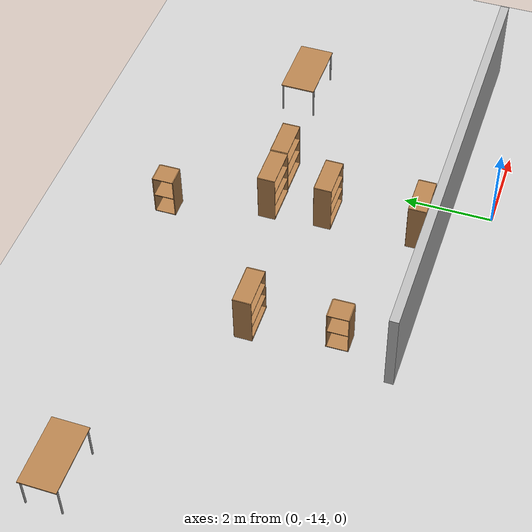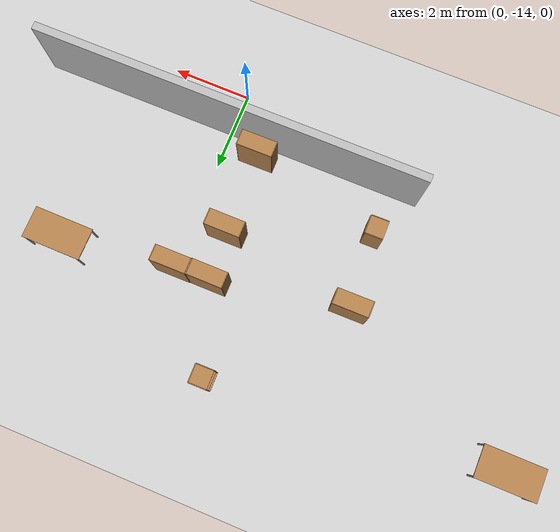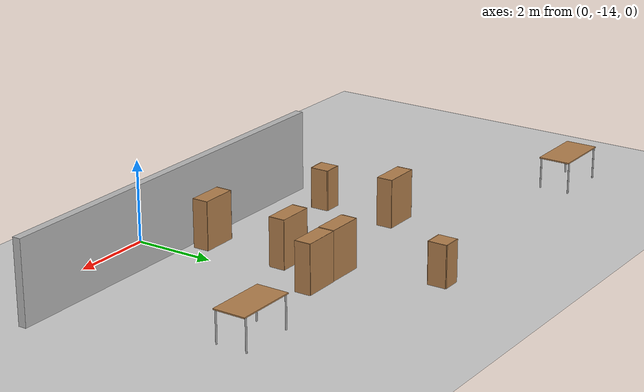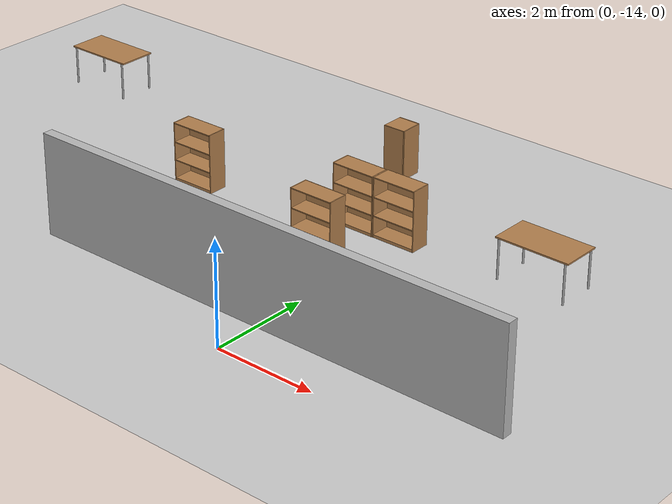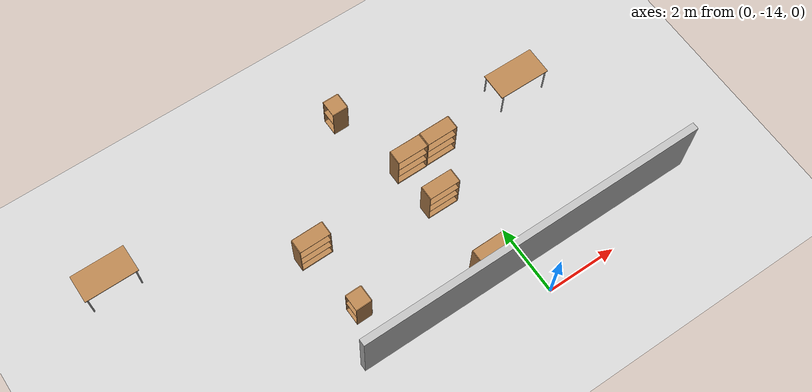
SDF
<sdf version="1.6">
 <world name="default">
  <model name="ground_plane">
   <static>1</static>
   <link name="link">
    <collision name="collision">
     <geometry><plane><normal>0 0 1</normal><size>100 100</size></plane></geometry>
     <surface><friction><ode><mu>100</mu><mu2>50</mu2></ode></friction></surface>
    </collision>
    <visual name="visual">
     <cast_shadows>0</cast_shadows>
     <geometry><plane><normal>0 0 1</normal><size>100 100</size></plane></geometry>
     <material>
      <script><uri>file://media/materials/scripts/gazebo.material</uri><name>Gazebo/Grey</name></script>
     </material>
    </visual>
    <velocity_decay><linear>0</linear><angular>0</angular></velocity_decay>
   </link>
  </model>
  <model name="wall_1_model">
   <pose>0 -13 1 0 -0 0</pose>
   <static>1</static>
   <link name="wall_1_body">
    <inertial>
     <mass>1</mass>
     <inertia><ixx>1</ixx><ixy>0</ixy><ixz>0</ixz><iyy>1</iyy><iyz>0</iyz><izz>1</izz></inertia>
    </inertial>
    <collision name="collision"><geometry><box><size>10 0.2 2</size></box></geometry></collision>
    <visual name="visual"><geometry><box><size>10 0.2 2</size></box></geometry></visual>
    <velocity_decay><linear>0</linear><angular>0</angular></velocity_decay>
   </link>
  </model>
  <model name="cabinet_0">
   <static>0</static>
   <link name="cabinet_bottom_plate">
    <inertial>
     <pose>0 0 -1 0 -0 0</pose>
     <inertia><ixx>2.05</ixx><ixy>0</ixy><ixz>0</ixz><iyy>2.05</iyy><iyz>0</iyz><izz>2.05</izz></inertia>
     <mass>25</mass>
    </inertial>
    <collision name="cabinet_bottom_plate_geom">
     <pose>0 0 0.01 0 -0 0</pose>
     <geometry><box><size>0.45 0.45 0.02</size></box></geometry>
    </collision>
    <visual name="cabinet_bottom_plate_geom_visual">
     <pose>0 0 0.01 0 -0 0</pose>
     <geometry><box><size>0.45 0.45 0.02</size></box></geometry>
     <material>
      <script><uri>file://media/materials/scripts/gazebo.material</uri><name>Gazebo/Wood</name></script>
     </material>
    </visual>
    <collision name="cabinet_bottom_plate_geom_cabinet_back_plate">
     <pose>0.235 0 0.51 0 -0 0</pose>
     <geometry><box><size>0.02 0.45 1.02</size></box></geometry>
    </collision>
    <visual name="cabinet_bottom_plate_geom_cabinet_back_plate_visual">
     <pose>0.235 0 0.51 0 -0 0</pose>
     <geometry><box><size>0.02 0.45 1.02</size></box></geometry>
     <material>
      <script><uri>file://media/materials/scripts/gazebo.material</uri><name>Gazebo/Wood</name></script>
     </material>
    </visual>
    <collision name="cabinet_bottom_plate_geom_cabinet_left_plate">
     <pose>0 0.235 0.51 0 -0 0</pose>
     <geometry><box><size>0.45 0.02 1.02</size></box></geometry>
    </collision>
    <visual name="cabinet_bottom_plate_geom_cabinet_left_plate_visual">
     <pose>0 0.235 0.51 0 -0 0</pose>
     <geometry><box><size>0.45 0.02 1.02</size></box></geometry>
     <material>
      <script><uri>file://media/materials/scripts/gazebo.material</uri><name>Gazebo/Wood</name></script>
     </material>
    </visual>
    <collision name="cabinet_bottom_plate_geom_cabinet_middle_plate">
     <pose>0 0 0.51 0 -0 0</pose>
     <geometry><box><size>0.45 0.45 0.02</size></box></geometry>
    </collision>
    <visual name="cabinet_bottom_plate_geom_cabinet_middle_plate_visual">
     <pose>0 0 0.51 0 -0 0</pose>
     <geometry><box><size>0.45 0.45 0.02</size></box></geometry>
     <material>
      <script><uri>file://media/materials/scripts/gazebo.material</uri><name>Gazebo/Wood</name></script>
     </material>
    </visual>
    <collision name="cabinet_bottom_plate_geom_cabinet_right_plate">
     <pose>0 -0.235 0.51 0 -0 0</pose>
     <geometry><box><size>0.45 0.02 1.02</size></box></geometry>
    </collision>
    <visual name="cabinet_bottom_plate_geom_cabinet_right_plate_visual">
     <pose>0 -0.235 0.51 0 -0 0</pose>
     <geometry><box><size>0.45 0.02 1.02</size></box></geometry>
     <material>
      <script><uri>file://media/materials/scripts/gazebo.material</uri><name>Gazebo/Wood</name></script>
     </material>
    </visual>
    <collision name="cabinet_bottom_plate_geom_cabinet_top_plate">
     <pose>0 0 1.01 0 -0 0</pose>
     <geometry><box><size>0.45 0.45 0.02</size></box></geometry>
    </collision>
    <visual name="cabinet_bottom_plate_geom_cabinet_top_plate_visual">
     <pose>0 0 1.01 0 -0 0</pose>
     <geometry><box><size>0.45 0.45 0.02</size></box></geometry>
     <material>
      <script><uri>file://media/materials/scripts/gazebo.material</uri><name>Gazebo/Wood</name></script>
     </material>
    </visual>
    <velocity_decay><linear>0</linear><angular>0</angular></velocity_decay>
   </link>
   <pose>-4.28216 -11.7566 -0 1e-06 0 0.015755</pose>
  </model>
  <model name="table">
   <static>0</static>
   <link name="link">
    <collision name="surface">
     <pose>0 0 0.9 0 -0 0</pose>
     <geometry><box><size>1.5 0.8 0.03</size></box></geometry>
    </collision>
    <visual name="visual1">
     <pose>0 0 0.9 0 -0 0</pose>
     <geometry><box><size>1.5 0.8 0.03</size></box></geometry>
     <material>
      <script><uri>file://media/materials/scripts/gazebo.material</uri><name>Gazebo/Wood</name></script>
     </material>
    </visual>
    <collision name="front_left_leg">
     <pose>0.68 0.38 0.5 0 -0 0</pose>
     <geometry><cylinder><radius>0.02</radius><length>0.8</length></cylinder></geometry>
    </collision>
    <visual name="front_left_leg">
     <pose>0.68 0.38 0.5 0 -0 0</pose>
     <geometry><cylinder><radius>0.02</radius><length>0.8</length></cylinder></geometry>
     <material>
      <script><uri>file://media/materials/scripts/gazebo.material</uri><name>Gazebo/Grey</name></script>
     </material>
    </visual>
    <collision name="front_right_leg">
     <pose>0.68 -0.38 0.5 0 -0 0</pose>
     <geometry><cylinder><radius>0.02</radius><length>0.8</length></cylinder></geometry>
    </collision>
    <visual name="front_right_leg">
     <pose>0.68 -0.38 0.5 0 -0 0</pose>
     <geometry><cylinder><radius>0.02</radius><length>0.8</length></cylinder></geometry>
     <material>
      <script><uri>file://media/materials/scripts/gazebo.material</uri><name>Gazebo/Grey</name></script>
     </material>
    </visual>
    <collision name="back_right_leg">
     <pose>-0.68 -0.38 0.5 0 -0 0</pose>
     <geometry><cylinder><radius>0.02</radius><length>0.8</length></cylinder></geometry>
    </collision>
    <visual name="back_right_leg">
     <pose>-0.68 -0.38 0.5 0 -0 0</pose>
     <geometry><cylinder><radius>0.02</radius><length>0.8</length></cylinder></geometry>
     <material>
      <script><uri>file://media/materials/scripts/gazebo.material</uri><name>Gazebo/Grey</name></script>
     </material>
    </visual>
    <collision name="back_left_leg">
     <pose>-0.68 0.38 0.5 0 -0 0</pose>
     <geometry><cylinder><radius>0.02</radius><length>0.8</length></cylinder></geometry>
    </collision>
    <visual name="back_left_leg">
     <pose>-0.68 0.38 0.5 0 -0 0</pose>
     <geometry><cylinder><radius>0.02</radius><length>0.8</length></cylinder></geometry>
     <material>
      <script><uri>file://media/materials/scripts/gazebo.material</uri><name>Gazebo/Grey</name></script>
     </material>
    </visual>
    <velocity_decay><linear>0</linear><angular>0</angular></velocity_decay>
    <inertial>
     <inertia><ixx>1</ixx><ixy>0</ixy><ixz>0</ixz><iyy>1</iyy><iyz>0</iyz><izz>1</izz></inertia>
     <mass>1</mass>
    </inertial>
   </link>
   <pose>2.72221 -8.79519 -0.1 0 0 -0.007184</pose>
  </model>
  <model name="cabinet_1">
   <static>0</static>
   <link name="cabinet_bottom_plate">
    <inertial>
     <pose>0 0 -1 0 -0 0</pose>
     <inertia><ixx>2.05</ixx><ixy>0</ixy><ixz>0</ixz><iyy>2.05</iyy><iyz>0</iyz><izz>2.05</izz></inertia>
     <mass>25</mass>
    </inertial>
    <collision name="cabinet_bottom_plate_geom">
     <pose>0 0 0.01 0 -0 0</pose>
     <geometry><box><size>0.45 0.45 0.02</size></box></geometry>
    </collision>
    <visual name="cabinet_bottom_plate_geom_visual">
     <pose>0 0 0.01 0 -0 0</pose>
     <geometry><box><size>0.45 0.45 0.02</size></box></geometry>
     <material>
      <script><uri>file://media/materials/scripts/gazebo.material</uri><name>Gazebo/Wood</name></script>
     </material>
    </visual>
    <collision name="cabinet_bottom_plate_geom_cabinet_back_plate">
     <pose>0.235 0 0.51 0 -0 0</pose>
     <geometry><box><size>0.02 0.45 1.02</size></box></geometry>
    </collision>
    <visual name="cabinet_bottom_plate_geom_cabinet_back_plate_visual">
     <pose>0.235 0 0.51 0 -0 0</pose>
     <geometry><box><size>0.02 0.45 1.02</size></box></geometry>
     <material>
      <script><uri>file://media/materials/scripts/gazebo.material</uri><name>Gazebo/Wood</name></script>
     </material>
    </visual>
    <collision name="cabinet_bottom_plate_geom_cabinet_left_plate">
     <pose>0 0.235 0.51 0 -0 0</pose>
     <geometry><box><size>0.45 0.02 1.02</size></box></geometry>
    </collision>
    <visual name="cabinet_bottom_plate_geom_cabinet_left_plate_visual">
     <pose>0 0.235 0.51 0 -0 0</pose>
     <geometry><box><size>0.45 0.02 1.02</size></box></geometry>
     <material>
      <script><uri>file://media/materials/scripts/gazebo.material</uri><name>Gazebo/Wood</name></script>
     </material>
    </visual>
    <collision name="cabinet_bottom_plate_geom_cabinet_middle_plate">
     <pose>0 0 0.51 0 -0 0</pose>
     <geometry><box><size>0.45 0.45 0.02</size></box></geometry>
    </collision>
    <visual name="cabinet_bottom_plate_geom_cabinet_middle_plate_visual">
     <pose>0 0 0.51 0 -0 0</pose>
     <geometry><box><size>0.45 0.45 0.02</size></box></geometry>
     <material>
      <script><uri>file://media/materials/scripts/gazebo.material</uri><name>Gazebo/Wood</name></script>
     </material>
    </visual>
    <collision name="cabinet_bottom_plate_geom_cabinet_right_plate">
     <pose>0 -0.235 0.51 0 -0 0</pose>
     <geometry><box><size>0.45 0.02 1.02</size></box></geometry>
    </collision>
    <visual name="cabinet_bottom_plate_geom_cabinet_right_plate_visual">
     <pose>0 -0.235 0.51 0 -0 0</pose>
     <geometry><box><size>0.45 0.02 1.02</size></box></geometry>
     <material>
      <script><uri>file://media/materials/scripts/gazebo.material</uri><name>Gazebo/Wood</name></script>
     </material>
    </visual>
    <collision name="cabinet_bottom_plate_geom_cabinet_top_plate">
     <pose>0 0 1.01 0 -0 0</pose>
     <geometry><box><size>0.45 0.45 0.02</size></box></geometry>
    </collision>
    <visual name="cabinet_bottom_plate_geom_cabinet_top_plate_visual">
     <pose>0 0 1.01 0 -0 0</pose>
     <geometry><box><size>0.45 0.45 0.02</size></box></geometry>
     <material>
      <script><uri>file://media/materials/scripts/gazebo.material</uri><name>Gazebo/Wood</name></script>
     </material>
    </visual>
    <velocity_decay><linear>0</linear><angular>0</angular></velocity_decay>
   </link>
   <pose>-1.82518 -6.98338 -0 -1e-06 0 0.008186</pose>
  </model>
  <model name="bookshelf_2">
   <static>0</static>
   <link name="link">
    <inertial>
     <mass>1</mass>
     <inertia><ixx>1</ixx><ixy>0</ixy><ixz>0</ixz><iyy>1</iyy><iyz>0</iyz><izz>1</izz></inertia>
    </inertial>
    <collision name="back">
     <pose>0 0.005 0.6 0 -0 0</pose>
     <geometry><box><size>0.9 0.01 1.2</size></box></geometry>
    </collision>
    <visual name="visual1">
     <pose>0 0.005 0.6 0 -0 0</pose>
     <geometry><box><size>0.9 0.01 1.2</size></box></geometry>
     <material>
      <script><uri>file://media/materials/scripts/gazebo.material</uri><name>Gazebo/Wood</name></script>
     </material>
    </visual>
    <collision name="left_side">
     <pose>0.45 -0.195 0.6 0 -0 0</pose>
     <geometry><box><size>0.02 0.4 1.2</size></box></geometry>
    </collision>
    <visual name="visual2">
     <pose>0.45 -0.195 0.6 0 -0 0</pose>
     <geometry><box><size>0.02 0.4 1.2</size></box></geometry>
     <material>
      <script><uri>file://media/materials/scripts/gazebo.material</uri><name>Gazebo/Wood</name></script>
     </material>
    </visual>
    <collision name="right_side">
     <pose>-0.45 -0.195 0.6 0 -0 0</pose>
     <geometry><box><size>0.02 0.4 1.2</size></box></geometry>
    </collision>
    <visual name="visual3">
     <pose>-0.45 -0.195 0.6 0 -0 0</pose>
     <geometry><box><size>0.02 0.4 1.2</size></box></geometry>
     <material>
      <script><uri>file://media/materials/scripts/gazebo.material</uri><name>Gazebo/Wood</name></script>
     </material>
    </visual>
    <collision name="bottom">
     <pose>0 -0.195 0.03 0 -0 0</pose>
     <geometry><box><size>0.88 0.4 0.06</size></box></geometry>
    </collision>
    <visual name="visual4">
     <pose>0 -0.195 0.03 0 -0 0</pose>
     <geometry><box><size>0.88 0.4 0.06</size></box></geometry>
     <material>
      <script><uri>file://media/materials/scripts/gazebo.material</uri><name>Gazebo/Wood</name></script>
     </material>
    </visual>
    <collision name="top">
     <pose>0 -0.195 1.19 0 -0 0</pose>
     <geometry><box><size>0.88 0.4 0.02</size></box></geometry>
    </collision>
    <visual name="visual5">
     <pose>0 -0.195 1.19 0 -0 0</pose>
     <geometry><box><size>0.88 0.4 0.02</size></box></geometry>
     <material>
      <script><uri>file://media/materials/scripts/gazebo.material</uri><name>Gazebo/Wood</name></script>
     </material>
    </visual>
    <collision name="low_shelf">
     <pose>0 -0.195 0.43 0 -0 0</pose>
     <geometry><box><size>0.88 0.4 0.02</size></box></geometry>
    </collision>
    <visual name="visual6">
     <pose>0 -0.195 0.43 0 -0 0</pose>
     <geometry><box><size>0.88 0.4 0.02</size></box></geometry>
     <material>
      <script><uri>file://media/materials/scripts/gazebo.material</uri><name>Gazebo/Wood</name></script>
     </material>
    </visual>
    <collision name="high_shelf">
     <pose>0 -0.195 0.8 0 -0 0</pose>
     <geometry><box><size>0.88 0.4 0.02</size></box></geometry>
    </collision>
    <visual name="visual7">
     <pose>0 -0.195 0.8 0 -0 0</pose>
     <geometry><box><size>0.88 0.4 0.02</size></box></geometry>
     <material>
      <script><uri>file://media/materials/scripts/gazebo.material</uri><name>Gazebo/Wood</name></script>
     </material>
    </visual>
    <velocity_decay><linear>0</linear><angular>0</angular></velocity_decay>
   </link>
   <pose>-0.879893 -12.3605 0 -5e-05 -0 0.00583</pose>
  </model>
  <model name="table_1">
   <static>0</static>
   <link name="link">
    <collision name="surface">
     <pose>0 0 0.9 0 -0 0</pose>
     <geometry><box><size>1.5 0.8 0.03</size></box></geometry>
    </collision>
    <visual name="visual1">
     <pose>0 0 0.9 0 -0 0</pose>
     <geometry><box><size>1.5 0.8 0.03</size></box></geometry>
     <material>
      <script><uri>file://media/materials/scripts/gazebo.material</uri><name>Gazebo/Wood</name></script>
     </material>
    </visual>
    <collision name="front_left_leg">
     <pose>0.68 0.38 0.5 0 -0 0</pose>
     <geometry><cylinder><radius>0.02</radius><length>0.8</length></cylinder></geometry>
    </collision>
    <visual name="front_left_leg">
     <pose>0.68 0.38 0.5 0 -0 0</pose>
     <geometry><cylinder><radius>0.02</radius><length>0.8</length></cylinder></geometry>
     <material>
      <script><uri>file://media/materials/scripts/gazebo.material</uri><name>Gazebo/Grey</name></script>
     </material>
    </visual>
    <collision name="front_right_leg">
     <pose>0.68 -0.38 0.5 0 -0 0</pose>
     <geometry><cylinder><radius>0.02</radius><length>0.8</length></cylinder></geometry>
    </collision>
    <visual name="front_right_leg">
     <pose>0.68 -0.38 0.5 0 -0 0</pose>
     <geometry><cylinder><radius>0.02</radius><length>0.8</length></cylinder></geometry>
     <material>
      <script><uri>file://media/materials/scripts/gazebo.material</uri><name>Gazebo/Grey</name></script>
     </material>
    </visual>
    <collision name="back_right_leg">
     <pose>-0.68 -0.38 0.5 0 -0 0</pose>
     <geometry><cylinder><radius>0.02</radius><length>0.8</length></cylinder></geometry>
    </collision>
    <visual name="back_right_leg">
     <pose>-0.68 -0.38 0.5 0 -0 0</pose>
     <geometry><cylinder><radius>0.02</radius><length>0.8</length></cylinder></geometry>
     <material>
      <script><uri>file://media/materials/scripts/gazebo.material</uri><name>Gazebo/Grey</name></script>
     </material>
    </visual>
    <collision name="back_left_leg">
     <pose>-0.68 0.38 0.5 0 -0 0</pose>
     <geometry><cylinder><radius>0.02</radius><length>0.8</length></cylinder></geometry>
    </collision>
    <visual name="back_left_leg">
     <pose>-0.68 0.38 0.5 0 -0 0</pose>
     <geometry><cylinder><radius>0.02</radius><length>0.8</length></cylinder></geometry>
     <material>
      <script><uri>file://media/materials/scripts/gazebo.material</uri><name>Gazebo/Grey</name></script>
     </material>
    </visual>
    <velocity_decay><linear>0</linear><angular>0</angular></velocity_decay>
    <inertial>
     <inertia><ixx>1</ixx><ixy>0</ixy><ixz>0</ixz><iyy>1</iyy><iyz>0</iyz><izz>1</izz></inertia>
     <mass>1</mass>
    </inertial>
   </link>
   <pose>-9.0505 -7.63991 -0.1 0 -0 -0.000634</pose>
  </model>
  <model name="bookshelf_3">
   <static>0</static>
   <link name="link">
    <inertial>
     <mass>1</mass>
     <inertia><ixx>1</ixx><ixy>0</ixy><ixz>0</ixz><iyy>1</iyy><iyz>0</iyz><izz>1</izz></inertia>
    </inertial>
    <collision name="back">
     <pose>0 0.005 0.6 0 -0 0</pose>
     <geometry><box><size>0.9 0.01 1.2</size></box></geometry>
    </collision>
    <visual name="visual1">
     <pose>0 0.005 0.6 0 -0 0</pose>
     <geometry><box><size>0.9 0.01 1.2</size></box></geometry>
     <material>
      <script><uri>file://media/materials/scripts/gazebo.material</uri><name>Gazebo/Wood</name></script>
     </material>
    </visual>
    <collision name="left_side">
     <pose>0.45 -0.195 0.6 0 -0 0</pose>
     <geometry><box><size>0.02 0.4 1.2</size></box></geometry>
    </collision>
    <visual name="visual2">
     <pose>0.45 -0.195 0.6 0 -0 0</pose>
     <geometry><box><size>0.02 0.4 1.2</size></box></geometry>
     <material>
      <script><uri>file://media/materials/scripts/gazebo.material</uri><name>Gazebo/Wood</name></script>
     </material>
    </visual>
    <collision name="right_side">
     <pose>-0.45 -0.195 0.6 0 -0 0</pose>
     <geometry><box><size>0.02 0.4 1.2</size></box></geometry>
    </collision>
    <visual name="visual3">
     <pose>-0.45 -0.195 0.6 0 -0 0</pose>
     <geometry><box><size>0.02 0.4 1.2</size></box></geometry>
     <material>
      <script><uri>file://media/materials/scripts/gazebo.material</uri><name>Gazebo/Wood</name></script>
     </material>
    </visual>
    <collision name="bottom">
     <pose>0 -0.195 0.03 0 -0 0</pose>
     <geometry><box><size>0.88 0.4 0.06</size></box></geometry>
    </collision>
    <visual name="visual4">
     <pose>0 -0.195 0.03 0 -0 0</pose>
     <geometry><box><size>0.88 0.4 0.06</size></box></geometry>
     <material>
      <script><uri>file://media/materials/scripts/gazebo.material</uri><name>Gazebo/Wood</name></script>
     </material>
    </visual>
    <collision name="top">
     <pose>0 -0.195 1.19 0 -0 0</pose>
     <geometry><box><size>0.88 0.4 0.02</size></box></geometry>
    </collision>
    <visual name="visual5">
     <pose>0 -0.195 1.19 0 -0 0</pose>
     <geometry><box><size>0.88 0.4 0.02</size></box></geometry>
     <material>
      <script><uri>file://media/materials/scripts/gazebo.material</uri><name>Gazebo/Wood</name></script>
     </material>
    </visual>
    <collision name="low_shelf">
     <pose>0 -0.195 0.43 0 -0 0</pose>
     <geometry><box><size>0.88 0.4 0.02</size></box></geometry>
    </collision>
    <visual name="visual6">
     <pose>0 -0.195 0.43 0 -0 0</pose>
     <geometry><box><size>0.88 0.4 0.02</size></box></geometry>
     <material>
      <script><uri>file://media/materials/scripts/gazebo.material</uri><name>Gazebo/Wood</name></script>
     </material>
    </visual>
    <collision name="high_shelf">
     <pose>0 -0.195 0.8 0 -0 0</pose>
     <geometry><box><size>0.88 0.4 0.02</size></box></geometry>
    </collision>
    <visual name="visual7">
     <pose>0 -0.195 0.8 0 -0 0</pose>
     <geometry><box><size>0.88 0.4 0.02</size></box></geometry>
     <material>
      <script><uri>file://media/materials/scripts/gazebo.material</uri><name>Gazebo/Wood</name></script>
     </material>
    </visual>
    <velocity_decay><linear>0</linear><angular>0</angular></velocity_decay>
   </link>
   <pose>-4.39804 -9.64261 -1e-06 -1e-06 3e-06 0.007974</pose>
  </model>
  <model name="bookshelf_4">
   <static>0</static>
   <link name="link">
    <inertial>
     <mass>1</mass>
     <inertia><ixx>1</ixx><ixy>0</ixy><ixz>0</ixz><iyy>1</iyy><iyz>0</iyz><izz>1</izz></inertia>
    </inertial>
    <collision name="back">
     <pose>0 0.005 0.6 0 -0 0</pose>
     <geometry><box><size>0.9 0.01 1.2</size></box></geometry>
    </collision>
    <visual name="visual1">
     <pose>0 0.005 0.6 0 -0 0</pose>
     <geometry><box><size>0.9 0.01 1.2</size></box></geometry>
     <material>
      <script><uri>file://media/materials/scripts/gazebo.material</uri><name>Gazebo/Wood</name></script>
     </material>
    </visual>
    <collision name="left_side">
     <pose>0.45 -0.195 0.6 0 -0 0</pose>
     <geometry><box><size>0.02 0.4 1.2</size></box></geometry>
    </collision>
    <visual name="visual2">
     <pose>0.45 -0.195 0.6 0 -0 0</pose>
     <geometry><box><size>0.02 0.4 1.2</size></box></geometry>
     <material>
      <script><uri>file://media/materials/scripts/gazebo.material</uri><name>Gazebo/Wood</name></script>
     </material>
    </visual>
    <collision name="right_side">
     <pose>-0.45 -0.195 0.6 0 -0 0</pose>
     <geometry><box><size>0.02 0.4 1.2</size></box></geometry>
    </collision>
    <visual name="visual3">
     <pose>-0.45 -0.195 0.6 0 -0 0</pose>
     <geometry><box><size>0.02 0.4 1.2</size></box></geometry>
     <material>
      <script><uri>file://media/materials/scripts/gazebo.material</uri><name>Gazebo/Wood</name></script>
     </material>
    </visual>
    <collision name="bottom">
     <pose>0 -0.195 0.03 0 -0 0</pose>
     <geometry><box><size>0.88 0.4 0.06</size></box></geometry>
    </collision>
    <visual name="visual4">
     <pose>0 -0.195 0.03 0 -0 0</pose>
     <geometry><box><size>0.88 0.4 0.06</size></box></geometry>
     <material>
      <script><uri>file://media/materials/scripts/gazebo.material</uri><name>Gazebo/Wood</name></script>
     </material>
    </visual>
    <collision name="top">
     <pose>0 -0.195 1.19 0 -0 0</pose>
     <geometry><box><size>0.88 0.4 0.02</size></box></geometry>
    </collision>
    <visual name="visual5">
     <pose>0 -0.195 1.19 0 -0 0</pose>
     <geometry><box><size>0.88 0.4 0.02</size></box></geometry>
     <material>
      <script><uri>file://media/materials/scripts/gazebo.material</uri><name>Gazebo/Wood</name></script>
     </material>
    </visual>
    <collision name="low_shelf">
     <pose>0 -0.195 0.43 0 -0 0</pose>
     <geometry><box><size>0.88 0.4 0.02</size></box></geometry>
    </collision>
    <visual name="visual6">
     <pose>0 -0.195 0.43 0 -0 0</pose>
     <geometry><box><size>0.88 0.4 0.02</size></box></geometry>
     <material>
      <script><uri>file://media/materials/scripts/gazebo.material</uri><name>Gazebo/Wood</name></script>
     </material>
    </visual>
    <collision name="high_shelf">
     <pose>0 -0.195 0.8 0 -0 0</pose>
     <geometry><box><size>0.88 0.4 0.02</size></box></geometry>
    </collision>
    <visual name="visual7">
     <pose>0 -0.195 0.8 0 -0 0</pose>
     <geometry><box><size>0.88 0.4 0.02</size></box></geometry>
     <material>
      <script><uri>file://media/materials/scripts/gazebo.material</uri><name>Gazebo/Wood</name></script>
     </material>
    </visual>
    <velocity_decay><linear>0</linear><angular>0</angular></velocity_decay>
   </link>
   <pose>-0.104225 -8.98775 0 -3.9e-05 0 0.005003</pose>
  </model>
  <model name="bookshelf_5">
   <static>0</static>
   <link name="link">
    <inertial>
     <mass>1</mass>
     <inertia><ixx>1</ixx><ixy>0</ixy><ixz>0</ixz><iyy>1</iyy><iyz>0</iyz><izz>1</izz></inertia>
    </inertial>
    <collision name="back">
     <pose>0 0.005 0.6 0 -0 0</pose>
     <geometry><box><size>0.9 0.01 1.2</size></box></geometry>
    </collision>
    <visual name="visual1">
     <pose>0 0.005 0.6 0 -0 0</pose>
     <geometry><box><size>0.9 0.01 1.2</size></box></geometry>
     <material>
      <script><uri>file://media/materials/scripts/gazebo.material</uri><name>Gazebo/Wood</name></script>
     </material>
    </visual>
    <collision name="left_side">
     <pose>0.45 -0.195 0.6 0 -0 0</pose>
     <geometry><box><size>0.02 0.4 1.2</size></box></geometry>
    </collision>
    <visual name="visual2">
     <pose>0.45 -0.195 0.6 0 -0 0</pose>
     <geometry><box><size>0.02 0.4 1.2</size></box></geometry>
     <material>
      <script><uri>file://media/materials/scripts/gazebo.material</uri><name>Gazebo/Wood</name></script>
     </material>
    </visual>
    <collision name="right_side">
     <pose>-0.45 -0.195 0.6 0 -0 0</pose>
     <geometry><box><size>0.02 0.4 1.2</size></box></geometry>
    </collision>
    <visual name="visual3">
     <pose>-0.45 -0.195 0.6 0 -0 0</pose>
     <geometry><box><size>0.02 0.4 1.2</size></box></geometry>
     <material>
      <script><uri>file://media/materials/scripts/gazebo.material</uri><name>Gazebo/Wood</name></script>
     </material>
    </visual>
    <collision name="bottom">
     <pose>0 -0.195 0.03 0 -0 0</pose>
     <geometry><box><size>0.88 0.4 0.06</size></box></geometry>
    </collision>
    <visual name="visual4">
     <pose>0 -0.195 0.03 0 -0 0</pose>
     <geometry><box><size>0.88 0.4 0.06</size></box></geometry>
     <material>
      <script><uri>file://media/materials/scripts/gazebo.material</uri><name>Gazebo/Wood</name></script>
     </material>
    </visual>
    <collision name="top">
     <pose>0 -0.195 1.19 0 -0 0</pose>
     <geometry><box><size>0.88 0.4 0.02</size></box></geometry>
    </collision>
    <visual name="visual5">
     <pose>0 -0.195 1.19 0 -0 0</pose>
     <geometry><box><size>0.88 0.4 0.02</size></box></geometry>
     <material>
      <script><uri>file://media/materials/scripts/gazebo.material</uri><name>Gazebo/Wood</name></script>
     </material>
    </visual>
    <collision name="low_shelf">
     <pose>0 -0.195 0.43 0 -0 0</pose>
     <geometry><box><size>0.88 0.4 0.02</size></box></geometry>
    </collision>
    <visual name="visual6">
     <pose>0 -0.195 0.43 0 -0 0</pose>
     <geometry><box><size>0.88 0.4 0.02</size></box></geometry>
     <material>
      <script><uri>file://media/materials/scripts/gazebo.material</uri><name>Gazebo/Wood</name></script>
     </material>
    </visual>
    <collision name="high_shelf">
     <pose>0 -0.195 0.8 0 -0 0</pose>
     <geometry><box><size>0.88 0.4 0.02</size></box></geometry>
    </collision>
    <visual name="visual7">
     <pose>0 -0.195 0.8 0 -0 0</pose>
     <geometry><box><size>0.88 0.4 0.02</size></box></geometry>
     <material>
      <script><uri>file://media/materials/scripts/gazebo.material</uri><name>Gazebo/Wood</name></script>
     </material>
    </visual>
    <velocity_decay><linear>0</linear><angular>0</angular></velocity_decay>
   </link>
   <pose>-1.02421 -8.99988 0 -3.4e-05 0 -1e-06</pose>
  </model>
  <model name="bookshelf_6">
   <static>0</static>
   <link name="link">
    <inertial>
     <mass>1</mass>
     <inertia><ixx>1</ixx><ixy>0</ixy><ixz>0</ixz><iyy>1</iyy><iyz>0</iyz><izz>1</izz></inertia>
    </inertial>
    <collision name="back">
     <pose>0 0.005 0.6 0 -0 0</pose>
     <geometry><box><size>0.9 0.01 1.2</size></box></geometry>
    </collision>
    <visual name="visual1">
     <pose>0 0.005 0.6 0 -0 0</pose>
     <geometry><box><size>0.9 0.01 1.2</size></box></geometry>
     <material>
      <script><uri>file://media/materials/scripts/gazebo.material</uri><name>Gazebo/Wood</name></script>
     </material>
    </visual>
    <collision name="left_side">
     <pose>0.45 -0.195 0.6 0 -0 0</pose>
     <geometry><box><size>0.02 0.4 1.2</size></box></geometry>
    </collision>
    <visual name="visual2">
     <pose>0.45 -0.195 0.6 0 -0 0</pose>
     <geometry><box><size>0.02 0.4 1.2</size></box></geometry>
     <material>
      <script><uri>file://media/materials/scripts/gazebo.material</uri><name>Gazebo/Wood</name></script>
     </material>
    </visual>
    <collision name="right_side">
     <pose>-0.45 -0.195 0.6 0 -0 0</pose>
     <geometry><box><size>0.02 0.4 1.2</size></box></geometry>
    </collision>
    <visual name="visual3">
     <pose>-0.45 -0.195 0.6 0 -0 0</pose>
     <geometry><box><size>0.02 0.4 1.2</size></box></geometry>
     <material>
      <script><uri>file://media/materials/scripts/gazebo.material</uri><name>Gazebo/Wood</name></script>
     </material>
    </visual>
    <collision name="bottom">
     <pose>0 -0.195 0.03 0 -0 0</pose>
     <geometry><box><size>0.88 0.4 0.06</size></box></geometry>
    </collision>
    <visual name="visual4">
     <pose>0 -0.195 0.03 0 -0 0</pose>
     <geometry><box><size>0.88 0.4 0.06</size></box></geometry>
     <material>
      <script><uri>file://media/materials/scripts/gazebo.material</uri><name>Gazebo/Wood</name></script>
     </material>
    </visual>
    <collision name="top">
     <pose>0 -0.195 1.19 0 -0 0</pose>
     <geometry><box><size>0.88 0.4 0.02</size></box></geometry>
    </collision>
    <visual name="visual5">
     <pose>0 -0.195 1.19 0 -0 0</pose>
     <geometry><box><size>0.88 0.4 0.02</size></box></geometry>
     <material>
      <script><uri>file://media/materials/scripts/gazebo.material</uri><name>Gazebo/Wood</name></script>
     </material>
    </visual>
    <collision name="low_shelf">
     <pose>0 -0.195 0.43 0 -0 0</pose>
     <geometry><box><size>0.88 0.4 0.02</size></box></geometry>
    </collision>
    <visual name="visual6">
     <pose>0 -0.195 0.43 0 -0 0</pose>
     <geometry><box><size>0.88 0.4 0.02</size></box></geometry>
     <material>
      <script><uri>file://media/materials/scripts/gazebo.material</uri><name>Gazebo/Wood</name></script>
     </material>
    </visual>
    <collision name="high_shelf">
     <pose>0 -0.195 0.8 0 -0 0</pose>
     <geometry><box><size>0.88 0.4 0.02</size></box></geometry>
    </collision>
    <visual name="visual7">
     <pose>0 -0.195 0.8 0 -0 0</pose>
     <geometry><box><size>0.88 0.4 0.02</size></box></geometry>
     <material>
      <script><uri>file://media/materials/scripts/gazebo.material</uri><name>Gazebo/Wood</name></script>
     </material>
    </visual>
    <velocity_decay><linear>0</linear><angular>0</angular></velocity_decay>
   </link>
   <pose>-0.928676 -10.261 -2e-06 -1.3e-05 4e-06 0</pose>
  </model>
 </world>
</sdf>
